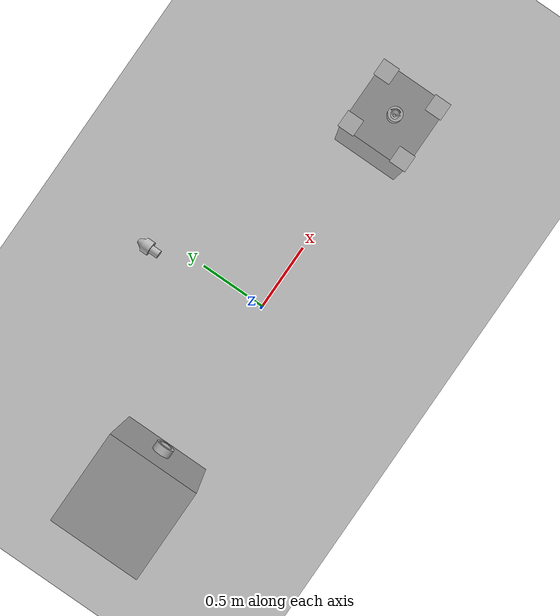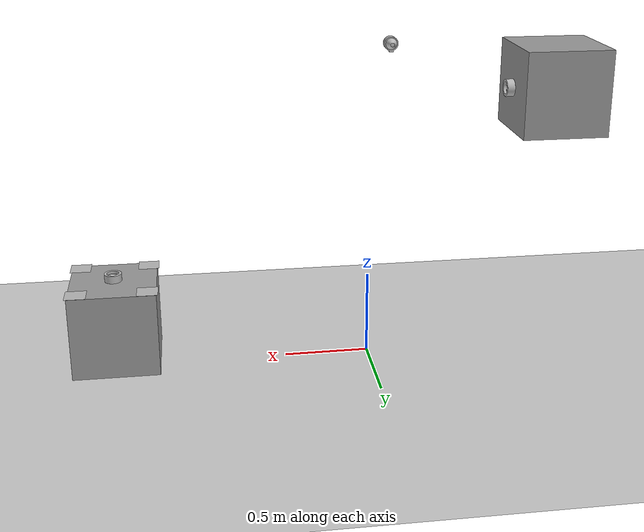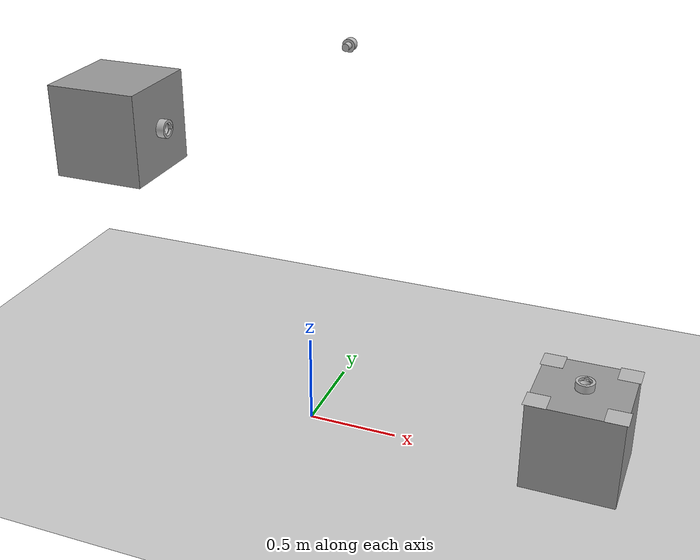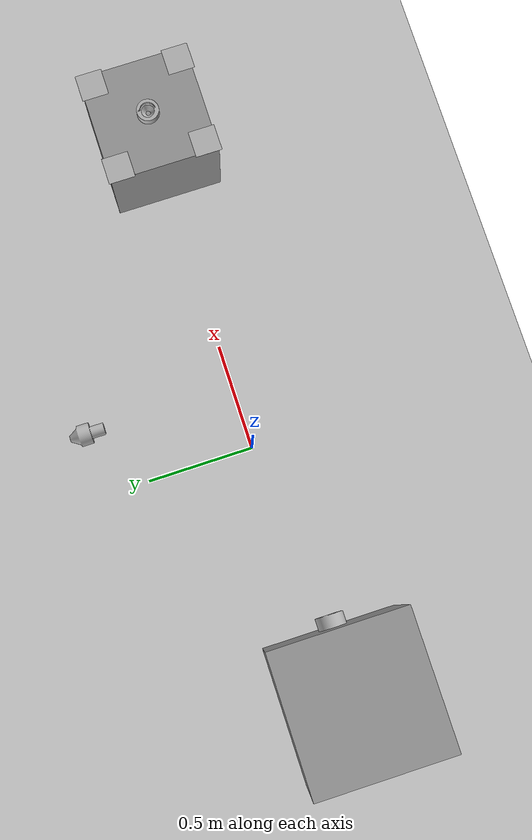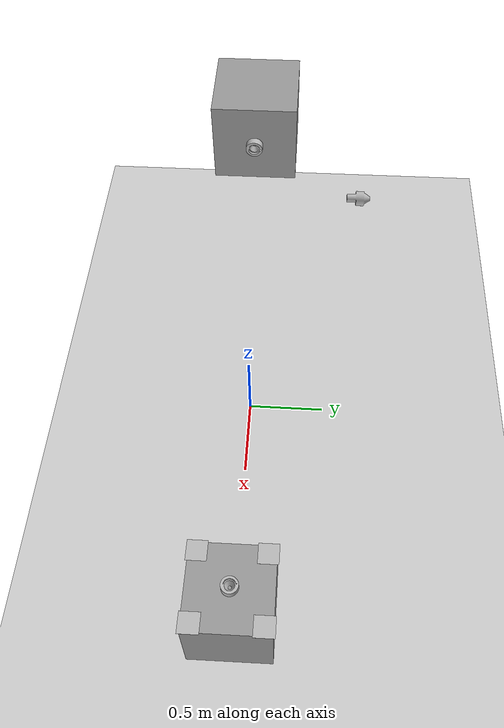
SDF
<sdf version="1.7">
 <world name="default">
  <light name="sun" type="directional">
   <pose>0 0 10 0 -0 0</pose>
   <diffuse>0.8 0.8 0.8 1</diffuse>
   <specular>0.2 0.2 0.2 1</specular>
   <attenuation>
    <range>1000</range>
    <constant>0.9</constant>
    <linear>0.01</linear>
    <quadratic>0.001</quadratic>
   </attenuation>
   <direction>-0.5 0.1 -0.9</direction>
   <spot><inner_angle>0</inner_angle><outer_angle>0</outer_angle><falloff>0</falloff></spot>
  </light>
  <model name="ground_plane">
   <static>1</static>
   <link name="link">
    <collision name="collision">
     <geometry><plane><normal>0 0 1</normal><size>100 100</size></plane></geometry>
     <surface><friction><ode><mu>100</mu><mu2>50</mu2></ode></friction></surface>
    </collision>
    <visual name="visual">
     <cast_shadows>0</cast_shadows>
     <geometry><plane><normal>0 0 1</normal><size>100 100</size></plane></geometry>
     <material>
      <script><uri>file://media/materials/scripts/gazebo.material</uri><name>Gazebo/Grey</name></script>
     </material>
    </visual>
   </link>
  </model>
  <include>
   <uri>model://docked_spacecraft</uri>
   <name>docked_spacecraft</name>
   <pose>1.5 0 0 0 0 0</pose>
  </include>
  <gravity>0 0 -9.8</gravity>
  <magnetic_field>6e-06 2.3e-05 -4.2e-05</magnetic_field>
  <atmosphere type="adiabatic"/>
  <physics type="ode">
   <max_step_size>0.001</max_step_size>
   <real_time_factor>1</real_time_factor>
   <real_time_update_rate>1000</real_time_update_rate>
  </physics>
  <scene><ambient>0.4 0.4 0.4 1</ambient><background>0.7 0.7 0.7 1</background><shadows>1</shadows></scene>
  <audio><device>default</device></audio>
  <spherical_coordinates>
   <surface_model>EARTH_WGS84</surface_model>
   <latitude_deg>0</latitude_deg>
   <longitude_deg>0</longitude_deg>
   <elevation>0</elevation>
   <heading_deg>0</heading_deg>
  </spherical_coordinates>
  <model name="docked_spacecraft">
   <static>0</static>
   <link name="cube_sat_link">
    <pose>0 0 0.3 0 -0 0</pose>
    <inertial>
     <mass>10</mass>
     <inertia><ixx>1.66667</ixx><ixy>0</ixy><ixz>0</ixz><iyy>1.66667</iyy><iyz>0</iyz><izz>1.66667</izz></inertia>
    </inertial>
    <gravity>0</gravity>
    <visual name="cube_visual">
     <geometry><box><size>0.5 0.5 0.5</size></box></geometry>
     <material>
      <script><name>Gazebo/Grey</name><uri>file://media/materials/scripts/gazebo.material</uri></script>
      <ambient>0.3 0.3 0.3 1</ambient>
      <diffuse>0.7 0.7 0.7 1</diffuse>
      <specular>0.01 0.01 0.01 1</specular>
     </material>
    </visual>
    <collision name="cube_collision">
     <geometry><box><size>0.5 0.5 0.5</size></box></geometry>
     <surface>
      <friction><ode><mu>0.1</mu><mu2>0.1</mu2></ode></friction>
      <bounce><restitution_coefficient>0</restitution_coefficient></bounce>
      <contact><ode><kp>1e+13</kp><kd>1</kd></ode></contact>
     </surface>
    </collision>
   </link>
   <link name="notch_ring_link">
    <pose>0 0 0.55 0 -0 0</pose>
    <gravity>0</gravity>
    <inertial>
     <mass>10</mass>
     <inertia>
      <ixx>0.012169</ixx>
      <iyy>0.012239</iyy>
      <izz>0.011722</izz>
      <ixy>0</ixy>
      <ixz>0</ixz>
      <iyz>0</iyz>
     </inertia>
    </inertial>
    <visual name="notch_ring_visual">
     <geometry><mesh><uri>model://notch_ring/meshes/notch_ringdae.dae</uri><scale>1 1 1</scale></mesh></geometry>
     <cast_shadows>0</cast_shadows>
    </visual>
    <collision name="notch_ring_collision">
     <geometry><mesh><uri>model://notch_ring/meshes/notch_ringdae.dae</uri><scale>1 1 1</scale></mesh></geometry>
    </collision>
   </link>
   <joint name="fixed_joint_cubesat_to_ring" type="fixed">
    <parent>cube_sat_link</parent>
    <child>notch_ring_link</child>
   </joint>
   <pose>-1.39096 0.0 1.62 0 1.5708 0</pose>
  </model>
  <model name="other_side">
   <static>0</static>
   <link name="link">
    <gravity>0</gravity>
    <inertial>
     <mass>10</mass>
     <inertia>
      <ixx>0.009881</ixx>
      <iyy>0.0088602</iyy>
      <izz>0.00473826</izz>
      <ixy>0</ixy>
      <ixz>0</ixz>
      <iyz>0.0006</iyz>
     </inertia>
    </inertial>
    <visual name="visual">
     <geometry><mesh><uri>model://other_side/meshes/other_side.dae</uri><scale>1 1 1</scale></mesh></geometry>
     <cast_shadows>0</cast_shadows>
    </visual>
    <collision name="collision_full">
     <geometry><mesh><uri>model://other_side/meshes/other_side.dae</uri><scale>1 1 1</scale></mesh></geometry>
    </collision>
   </link>
   <pose>0.000 0.6 2.00 -1.5708 0 0</pose>
  </model>
 </world>
</sdf>

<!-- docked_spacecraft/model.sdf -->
<sdf version="1.7">
  <model name="docked_spacecraft">
    <static>false</static>

    <!--   CubeSat main body                   -->
    <link name="cube_sat_link">
      <pose>0 0 0.3 0 0 0</pose>
      <inertial>
        <mass>10</mass>
        <inertia>
          <ixx>1.66667</ixx>
          <ixy>0</ixy>
          <ixz>0</ixz>
          <iyy>1.66667</iyy>
          <iyz>0</iyz>
          <izz>1.66667</izz>
        </inertia>
      </inertial>
      <self_collide>false</self_collide>
      <enable_wind>false</enable_wind>
      <kinematic>false</kinematic>
      <gravity>false</gravity>

      <visual name="cube_visual">
        <geometry>
          <box><size>0.5 0.5 0.5</size></box>
        </geometry>
        <material>
          <script>
            <name>Gazebo/Grey</name>
            <uri>file://media/materials/scripts/gazebo.material</uri>
          </script>
          <ambient>0.3 0.3 0.3 1</ambient>
          <diffuse>0.7 0.7 0.7 1</diffuse>
          <specular>0.01 0.01 0.01 1</specular>
        </material>
      </visual>

      <!-- ArUco fiducials placed on the four top corners of the CubeSat -->
      <visual name="aruco_marker_0_visual">
        <pose>0.2 0.2 0.255 0 0 0</pose>
        <geometry>
          <plane>
            <size>0.12 0.12</size>
            <normal>0 0 1</normal>
          </plane>
        </geometry>
        <material>
          <script>
            <uri>model://docked_spacecraft/materials/scripts</uri>
            <uri>model://docked_spacecraft/materials/textures</uri>
            <name>aruco/marker0</name>
          </script>
        </material>
        <double_sided>true</double_sided>
      </visual>

      <visual name="aruco_marker_1_visual">
        <pose>-0.2 0.2 0.255 0 0 0</pose>
        <geometry>
          <plane>
            <size>0.12 0.12</size>
            <normal>0 0 1</normal>
          </plane>
        </geometry>
        <material>
          <script>
            <uri>model://docked_spacecraft/materials/scripts</uri>
            <uri>model://docked_spacecraft/materials/textures</uri>
            <name>aruco/marker1</name>
          </script>
        </material>
        <double_sided>true</double_sided>
      </visual>

      <visual name="aruco_marker_2_visual">
        <pose>0.2 -0.2 0.255 0 0 0</pose>
        <geometry>
          <plane>
            <size>0.12 0.12</size>
            <normal>0 0 1</normal>
          </plane>
        </geometry>
        <material>
          <script>
            <uri>model://docked_spacecraft/materials/scripts</uri>
            <uri>model://docked_spacecraft/materials/textures</uri>
            <name>aruco/marker2</name>
          </script>
        </material>
        <double_sided>true</double_sided>
      </visual>

      <visual name="aruco_marker_3_visual">
        <pose>-0.2 -0.2 0.255 0 0 0</pose>
        <geometry>
          <plane>
            <size>0.12 0.12</size>
            <normal>0 0 1</normal>
          </plane>
        </geometry>
        <material>
          <script>
            <uri>model://docked_spacecraft/materials/scripts</uri>
            <uri>model://docked_spacecraft/materials/textures</uri>
            <name>aruco/marker3</name>
          </script>
        </material>
        <double_sided>true</double_sided>
      </visual>

      <collision name="cube_collision">
        <geometry>
          <box><size>0.5 0.5 0.5</size></box>
        </geometry>
        <surface>
          <friction>
            <ode>
              <mu>0.1</mu>
              <mu2>0.1</mu2>
            </ode>
          </friction>
          <bounce><restitution_coefficient>0</restitution_coefficient></bounce>
          <contact><ode><kp>1e13</kp><kd>1</kd></ode></contact>
        </surface>
      </collision>
    </link>

    <!--   Docking Ring (Notch Ring Target)     -->
    <link name="notch_ring_link">
      <pose>0 0 0.55 0 0 0</pose> <!-- Adjust Z to place it just in front -->
      <gravity>false</gravity>
      <self_collide>false</self_collide>
      <kinematic>false</kinematic>

      <inertial>
        <mass>10.0</mass>
        <inertia>
          <ixx>0.012169</ixx>
          <iyy>0.012239</iyy>
          <izz>0.011722</izz>
          <ixy>0</ixy><ixz>0</ixz><iyz>0</iyz>
        </inertia>
      </inertial>

      <visual name="notch_ring_visual">
        <geometry>
          <mesh>
            <uri>model://notch_ring/meshes/notch_ringdae.dae</uri>
            <scale>1 1 1</scale>
          </mesh>
        </geometry>
        <cast_shadows>false</cast_shadows>
      </visual>

      <collision name="notch_ring_collision">
        <geometry>
          <mesh>
            <uri>model://notch_ring/meshes/notch_ringdae.dae</uri>
            <scale>1 1 1</scale>
          </mesh>
        </geometry>
        <surface>
          <contact><ode/></contact>
          <friction><ode/></friction>
        </surface>
      </collision>
    </link>

    <!--   Fixed Joint between both parts       -->
    <joint name="fixed_joint_cubesat_to_ring" type="fixed">
      <parent>cube_sat_link</parent>
      <child>notch_ring_link</child>
    </joint>

  </model>
</sdf>
